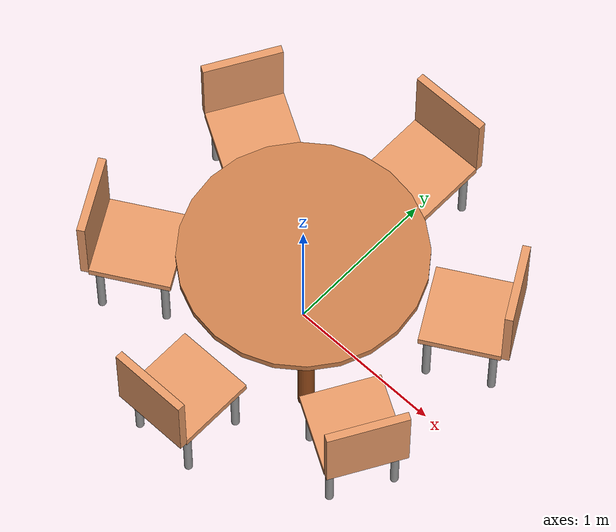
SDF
<?xml version='1.0'?>
<sdf version='1.7'>
  <model name='round_table_with_chairs_1.5m'>
    <model name='chair_1'>
      <static>1</static>
      <link name='chair_base'>
        <visual name='seat_visual'>
          <geometry>
            <box>
              <size>0.5 0.5 0.05</size>
            </box>
          </geometry>
          <pose>0 0 0.45 0 -0 0</pose>
          <material>
            <ambient>0.8 0.5 0.3 1</ambient>
            <diffuse>0.9 0.6 0.4 1</diffuse>
          </material>
        </visual>
        <collision name='seat_collision'>
          <geometry>
            <box>
              <size>0.5 0.5 0.05</size>
            </box>
          </geometry>
          <pose>0 0 0.45 0 -0 0</pose>
        </collision>
        <visual name='backrest_visual'>
          <geometry>
            <box>
              <size>0.5 0.05 0.5</size>
            </box>
          </geometry>
          <pose>0 -0.275 0.7 0 -0 0</pose>
          <material>
            <ambient>0.8 0.5 0.3 1</ambient>
            <diffuse>0.9 0.6 0.4 1</diffuse>
          </material>
        </visual>
        <collision name='backrest_collision'>
          <geometry>
            <box>
              <size>0.5 0.05 0.5</size>
            </box>
          </geometry>
          <pose>0 -0.275 0.7 0 -0 0</pose>
        </collision>
        <visual name='leg1_visual'>
          <geometry>
            <cylinder>
              <radius>0.025</radius>
              <length>0.45</length>
            </cylinder>
          </geometry>
          <pose>0.2 0.2 0.225 0 -0 0</pose>
          <material>
            <ambient>0.5 0.5 0.5 1</ambient>
            <diffuse>0.6 0.6 0.6 1</diffuse>
          </material>
        </visual>
        <collision name='leg1_collision'>
          <geometry>
            <cylinder>
              <radius>0.025</radius>
              <length>0.45</length>
            </cylinder>
          </geometry>
          <pose>0.2 0.2 0.225 0 -0 0</pose>
        </collision>
        <visual name='leg2_visual'>
          <geometry>
            <cylinder>
              <radius>0.025</radius>
              <length>0.45</length>
            </cylinder>
          </geometry>
          <pose>0.2 -0.2 0.225 0 -0 0</pose>
          <material>
            <ambient>0.5 0.5 0.5 1</ambient>
            <diffuse>0.6 0.6 0.6 1</diffuse>
          </material>
        </visual>
        <collision name='leg2_collision'>
          <geometry>
            <cylinder>
              <radius>0.025</radius>
              <length>0.45</length>
            </cylinder>
          </geometry>
          <pose>0.2 -0.2 0.225 0 -0 0</pose>
        </collision>
        <visual name='leg3_visual'>
          <geometry>
            <cylinder>
              <radius>0.025</radius>
              <length>0.45</length>
            </cylinder>
          </geometry>
          <pose>-0.2 0.2 0.225 0 -0 0</pose>
          <material>
            <ambient>0.5 0.5 0.5 1</ambient>
            <diffuse>0.6 0.6 0.6 1</diffuse>
          </material>
        </visual>
        <collision name='leg3_collision'>
          <geometry>
            <cylinder>
              <radius>0.025</radius>
              <length>0.45</length>
            </cylinder>
          </geometry>
          <pose>-0.2 0.2 0.225 0 -0 0</pose>
        </collision>
        <visual name='leg4_visual'>
          <geometry>
            <cylinder>
              <radius>0.025</radius>
              <length>0.45</length>
            </cylinder>
          </geometry>
          <pose>-0.2 -0.2 0.225 0 -0 0</pose>
          <material>
            <ambient>0.5 0.5 0.5 1</ambient>
            <diffuse>0.6 0.6 0.6 1</diffuse>
          </material>
        </visual>
        <collision name='leg4_collision'>
          <geometry>
            <cylinder>
              <radius>0.025</radius>
              <length>0.45</length>
            </cylinder>
          </geometry>
          <pose>-0.2 -0.2 0.225 0 -0 0</pose>
        </collision>
      </link>
      <pose>0.0 -1.0 0 0 -0 0</pose>
    </model>
    <model name='chair_2'>
      <static>1</static>
      <link name='chair_base'>
        <visual name='seat_visual'>
          <geometry>
            <box>
              <size>0.5 0.5 0.05</size>
            </box>
          </geometry>
          <pose>0 0 0.45 0 -0 0</pose>
          <material>
            <ambient>0.8 0.5 0.3 1</ambient>
            <diffuse>0.9 0.6 0.4 1</diffuse>
          </material>
        </visual>
        <collision name='seat_collision'>
          <geometry>
            <box>
              <size>0.5 0.5 0.05</size>
            </box>
          </geometry>
          <pose>0 0 0.45 0 -0 0</pose>
        </collision>
        <visual name='backrest_visual'>
          <geometry>
            <box>
              <size>0.5 0.05 0.5</size>
            </box>
          </geometry>
          <pose>0 -0.275 0.7 0 -0 0</pose>
          <material>
            <ambient>0.8 0.5 0.3 1</ambient>
            <diffuse>0.9 0.6 0.4 1</diffuse>
          </material>
        </visual>
        <collision name='backrest_collision'>
          <geometry>
            <box>
              <size>0.5 0.05 0.5</size>
            </box>
          </geometry>
          <pose>0 -0.275 0.7 0 -0 0</pose>
        </collision>
        <visual name='leg1_visual'>
          <geometry>
            <cylinder>
              <radius>0.025</radius>
              <length>0.45</length>
            </cylinder>
          </geometry>
          <pose>0.2 0.2 0.225 0 -0 0</pose>
          <material>
            <ambient>0.5 0.5 0.5 1</ambient>
            <diffuse>0.6 0.6 0.6 1</diffuse>
          </material>
        </visual>
        <collision name='leg1_collision'>
          <geometry>
            <cylinder>
              <radius>0.025</radius>
              <length>0.45</length>
            </cylinder>
          </geometry>
          <pose>0.2 0.2 0.225 0 -0 0</pose>
        </collision>
        <visual name='leg2_visual'>
          <geometry>
            <cylinder>
              <radius>0.025</radius>
              <length>0.45</length>
            </cylinder>
          </geometry>
          <pose>0.2 -0.2 0.225 0 -0 0</pose>
          <material>
            <ambient>0.5 0.5 0.5 1</ambient>
            <diffuse>0.6 0.6 0.6 1</diffuse>
          </material>
        </visual>
        <collision name='leg2_collision'>
          <geometry>
            <cylinder>
              <radius>0.025</radius>
              <length>0.45</length>
            </cylinder>
          </geometry>
          <pose>0.2 -0.2 0.225 0 -0 0</pose>
        </collision>
        <visual name='leg3_visual'>
          <geometry>
            <cylinder>
              <radius>0.025</radius>
              <length>0.45</length>
            </cylinder>
          </geometry>
          <pose>-0.2 0.2 0.225 0 -0 0</pose>
          <material>
            <ambient>0.5 0.5 0.5 1</ambient>
            <diffuse>0.6 0.6 0.6 1</diffuse>
          </material>
        </visual>
        <collision name='leg3_collision'>
          <geometry>
            <cylinder>
              <radius>0.025</radius>
              <length>0.45</length>
            </cylinder>
          </geometry>
          <pose>-0.2 0.2 0.225 0 -0 0</pose>
        </collision>
        <visual name='leg4_visual'>
          <geometry>
            <cylinder>
              <radius>0.025</radius>
              <length>0.45</length>
            </cylinder>
          </geometry>
          <pose>-0.2 -0.2 0.225 0 -0 0</pose>
          <material>
            <ambient>0.5 0.5 0.5 1</ambient>
            <diffuse>0.6 0.6 0.6 1</diffuse>
          </material>
        </visual>
        <collision name='leg4_collision'>
          <geometry>
            <cylinder>
              <radius>0.025</radius>
              <length>0.45</length>
            </cylinder>
          </geometry>
          <pose>-0.2 -0.2 0.225 0 -0 0</pose>
        </collision>
      </link>
      <pose>0.866025 -0.5 0 0 -0 1.04620</pose>
    </model>
    <model name='chair_3'>
      <static>1</static>
      <link name='chair_base'>
        <visual name='seat_visual'>
          <geometry>
            <box>
              <size>0.5 0.5 0.05</size>
            </box>
          </geometry>
          <pose>0 0 0.45 0 -0 0</pose>
          <material>
            <ambient>0.8 0.5 0.3 1</ambient>
            <diffuse>0.9 0.6 0.4 1</diffuse>
          </material>
        </visual>
        <collision name='seat_collision'>
          <geometry>
            <box>
              <size>0.5 0.5 0.05</size>
            </box>
          </geometry>
          <pose>0 0 0.45 0 -0 0</pose>
        </collision>
        <visual name='backrest_visual'>
          <geometry>
            <box>
              <size>0.5 0.05 0.5</size>
            </box>
          </geometry>
          <pose>0 -0.275 0.7 0 -0 0</pose>
          <material>
            <ambient>0.8 0.5 0.3 1</ambient>
            <diffuse>0.9 0.6 0.4 1</diffuse>
          </material>
        </visual>
        <collision name='backrest_collision'>
          <geometry>
            <box>
              <size>0.5 0.05 0.5</size>
            </box>
          </geometry>
          <pose>0 -0.275 0.7 0 -0 0</pose>
        </collision>
        <visual name='leg1_visual'>
          <geometry>
            <cylinder>
              <radius>0.025</radius>
              <length>0.45</length>
            </cylinder>
          </geometry>
          <pose>0.2 0.2 0.225 0 -0 0</pose>
          <material>
            <ambient>0.5 0.5 0.5 1</ambient>
            <diffuse>0.6 0.6 0.6 1</diffuse>
          </material>
        </visual>
        <collision name='leg1_collision'>
          <geometry>
            <cylinder>
              <radius>0.025</radius>
              <length>0.45</length>
            </cylinder>
          </geometry>
          <pose>0.2 0.2 0.225 0 -0 0</pose>
        </collision>
        <visual name='leg2_visual'>
          <geometry>
            <cylinder>
              <radius>0.025</radius>
              <length>0.45</length>
            </cylinder>
          </geometry>
          <pose>0.2 -0.2 0.225 0 -0 0</pose>
          <material>
            <ambient>0.5 0.5 0.5 1</ambient>
            <diffuse>0.6 0.6 0.6 1</diffuse>
          </material>
        </visual>
        <collision name='leg2_collision'>
          <geometry>
            <cylinder>
              <radius>0.025</radius>
              <length>0.45</length>
            </cylinder>
          </geometry>
          <pose>0.2 -0.2 0.225 0 -0 0</pose>
        </collision>
        <visual name='leg3_visual'>
          <geometry>
            <cylinder>
              <radius>0.025</radius>
              <length>0.45</length>
            </cylinder>
          </geometry>
          <pose>-0.2 0.2 0.225 0 -0 0</pose>
          <material>
            <ambient>0.5 0.5 0.5 1</ambient>
            <diffuse>0.6 0.6 0.6 1</diffuse>
          </material>
        </visual>
        <collision name='leg3_collision'>
          <geometry>
            <cylinder>
              <radius>0.025</radius>
              <length>0.45</length>
            </cylinder>
          </geometry>
          <pose>-0.2 0.2 0.225 0 -0 0</pose>
        </collision>
        <visual name='leg4_visual'>
          <geometry>
            <cylinder>
              <radius>0.025</radius>
              <length>0.45</length>
            </cylinder>
          </geometry>
          <pose>-0.2 -0.2 0.225 0 -0 0</pose>
          <material>
            <ambient>0.5 0.5 0.5 1</ambient>
            <diffuse>0.6 0.6 0.6 1</diffuse>
          </material>
        </visual>
        <collision name='leg4_collision'>
          <geometry>
            <cylinder>
              <radius>0.025</radius>
              <length>0.45</length>
            </cylinder>
          </geometry>
          <pose>-0.2 -0.2 0.225 0 -0 0</pose>
        </collision>
      </link>
      <pose>0.866025 0.5 0 0 -0 2.09440</pose>
    </model>
    <model name='chair_4'>
      <static>1</static>
      <link name='chair_base'>
        <visual name='seat_visual'>
          <geometry>
            <box>
              <size>0.5 0.5 0.05</size>
            </box>
          </geometry>
          <pose>0 0 0.45 0 -0 0</pose>
          <material>
            <ambient>0.8 0.5 0.3 1</ambient>
            <diffuse>0.9 0.6 0.4 1</diffuse>
          </material>
        </visual>
        <collision name='seat_collision'>
          <geometry>
            <box>
              <size>0.5 0.5 0.05</size>
            </box>
          </geometry>
          <pose>0 0 0.45 0 -0 0</pose>
        </collision>
        <visual name='backrest_visual'>
          <geometry>
            <box>
              <size>0.5 0.05 0.5</size>
            </box>
          </geometry>
          <pose>0 -0.275 0.7 0 -0 0</pose>
          <material>
            <ambient>0.8 0.5 0.3 1</ambient>
            <diffuse>0.9 0.6 0.4 1</diffuse>
          </material>
        </visual>
        <collision name='backrest_collision'>
          <geometry>
            <box>
              <size>0.5 0.05 0.5</size>
            </box>
          </geometry>
          <pose>0 -0.275 0.7 0 -0 0</pose>
        </collision>
        <visual name='leg1_visual'>
          <geometry>
            <cylinder>
              <radius>0.025</radius>
              <length>0.45</length>
            </cylinder>
          </geometry>
          <pose>0.2 0.2 0.225 0 -0 0</pose>
          <material>
            <ambient>0.5 0.5 0.5 1</ambient>
            <diffuse>0.6 0.6 0.6 1</diffuse>
          </material>
        </visual>
        <collision name='leg1_collision'>
          <geometry>
            <cylinder>
              <radius>0.025</radius>
              <length>0.45</length>
            </cylinder>
          </geometry>
          <pose>0.2 0.2 0.225 0 -0 0</pose>
        </collision>
        <visual name='leg2_visual'>
          <geometry>
            <cylinder>
              <radius>0.025</radius>
              <length>0.45</length>
            </cylinder>
          </geometry>
          <pose>0.2 -0.2 0.225 0 -0 0</pose>
          <material>
            <ambient>0.5 0.5 0.5 1</ambient>
            <diffuse>0.6 0.6 0.6 1</diffuse>
          </material>
        </visual>
        <collision name='leg2_collision'>
          <geometry>
            <cylinder>
              <radius>0.025</radius>
              <length>0.45</length>
            </cylinder>
          </geometry>
          <pose>0.2 -0.2 0.225 0 -0 0</pose>
        </collision>
        <visual name='leg3_visual'>
          <geometry>
            <cylinder>
              <radius>0.025</radius>
              <length>0.45</length>
            </cylinder>
          </geometry>
          <pose>-0.2 0.2 0.225 0 -0 0</pose>
          <material>
            <ambient>0.5 0.5 0.5 1</ambient>
            <diffuse>0.6 0.6 0.6 1</diffuse>
          </material>
        </visual>
        <collision name='leg3_collision'>
          <geometry>
            <cylinder>
              <radius>0.025</radius>
              <length>0.45</length>
            </cylinder>
          </geometry>
          <pose>-0.2 0.2 0.225 0 -0 0</pose>
        </collision>
        <visual name='leg4_visual'>
          <geometry>
            <cylinder>
              <radius>0.025</radius>
              <length>0.45</length>
            </cylinder>
          </geometry>
          <pose>-0.2 -0.2 0.225 0 -0 0</pose>
          <material>
            <ambient>0.5 0.5 0.5 1</ambient>
            <diffuse>0.6 0.6 0.6 1</diffuse>
          </material>
        </visual>
        <collision name='leg4_collision'>
          <geometry>
            <cylinder>
              <radius>0.025</radius>
              <length>0.45</length>
            </cylinder>
          </geometry>
          <pose>-0.2 -0.2 0.225 0 -0 0</pose>
        </collision>
      </link>
      <pose>0.0 1.0 0 0 -0 3.141592</pose>
    </model>
    <model name='chair_5'>
      <static>1</static>
      <link name='chair_base'>
        <visual name='seat_visual'>
          <geometry>
            <box>
              <size>0.5 0.5 0.05</size>
            </box>
          </geometry>
          <pose>0 0 0.45 0 -0 0</pose>
          <material>
            <ambient>0.8 0.5 0.3 1</ambient>
            <diffuse>0.9 0.6 0.4 1</diffuse>
          </material>
        </visual>
        <collision name='seat_collision'>
          <geometry>
            <box>
              <size>0.5 0.5 0.05</size>
            </box>
          </geometry>
          <pose>0 0 0.45 0 -0 0</pose>
        </collision>
        <visual name='backrest_visual'>
          <geometry>
            <box>
              <size>0.5 0.05 0.5</size>
            </box>
          </geometry>
          <pose>0 -0.275 0.7 0 -0 0</pose>
          <material>
            <ambient>0.8 0.5 0.3 1</ambient>
            <diffuse>0.9 0.6 0.4 1</diffuse>
          </material>
        </visual>
        <collision name='backrest_collision'>
          <geometry>
            <box>
              <size>0.5 0.05 0.5</size>
            </box>
          </geometry>
          <pose>0 -0.275 0.7 0 -0 0</pose>
        </collision>
        <visual name='leg1_visual'>
          <geometry>
            <cylinder>
              <radius>0.025</radius>
              <length>0.45</length>
            </cylinder>
          </geometry>
          <pose>0.2 0.2 0.225 0 -0 0</pose>
          <material>
            <ambient>0.5 0.5 0.5 1</ambient>
            <diffuse>0.6 0.6 0.6 1</diffuse>
          </material>
        </visual>
        <collision name='leg1_collision'>
          <geometry>
            <cylinder>
              <radius>0.025</radius>
              <length>0.45</length>
            </cylinder>
          </geometry>
          <pose>0.2 0.2 0.225 0 -0 0</pose>
        </collision>
        <visual name='leg2_visual'>
          <geometry>
            <cylinder>
              <radius>0.025</radius>
              <length>0.45</length>
            </cylinder>
          </geometry>
          <pose>0.2 -0.2 0.225 0 -0 0</pose>
          <material>
            <ambient>0.5 0.5 0.5 1</ambient>
            <diffuse>0.6 0.6 0.6 1</diffuse>
          </material>
        </visual>
        <collision name='leg2_collision'>
          <geometry>
            <cylinder>
              <radius>0.025</radius>
              <length>0.45</length>
            </cylinder>
          </geometry>
          <pose>0.2 -0.2 0.225 0 -0 0</pose>
        </collision>
        <visual name='leg3_visual'>
          <geometry>
            <cylinder>
              <radius>0.025</radius>
              <length>0.45</length>
            </cylinder>
          </geometry>
          <pose>-0.2 0.2 0.225 0 -0 0</pose>
          <material>
            <ambient>0.5 0.5 0.5 1</ambient>
            <diffuse>0.6 0.6 0.6 1</diffuse>
          </material>
        </visual>
        <collision name='leg3_collision'>
          <geometry>
            <cylinder>
              <radius>0.025</radius>
              <length>0.45</length>
            </cylinder>
          </geometry>
          <pose>-0.2 0.2 0.225 0 -0 0</pose>
        </collision>
        <visual name='leg4_visual'>
          <geometry>
            <cylinder>
              <radius>0.025</radius>
              <length>0.45</length>
            </cylinder>
          </geometry>
          <pose>-0.2 -0.2 0.225 0 -0 0</pose>
          <material>
            <ambient>0.5 0.5 0.5 1</ambient>
            <diffuse>0.6 0.6 0.6 1</diffuse>
          </material>
        </visual>
        <collision name='leg4_collision'>
          <geometry>
            <cylinder>
              <radius>0.025</radius>
              <length>0.45</length>
            </cylinder>
          </geometry>
          <pose>-0.2 -0.2 0.225 0 -0 0</pose>
        </collision>
      </link>
      <pose>-0.866025 0.5 0 0 -0 -2.09440</pose>
    </model>
    <model name='chair_6'>
      <static>1</static>
      <link name='chair_base'>
        <visual name='seat_visual'>
          <geometry>
            <box>
              <size>0.5 0.5 0.05</size>
            </box>
          </geometry>
          <pose>0 0 0.45 0 -0 0</pose>
          <material>
            <ambient>0.8 0.5 0.3 1</ambient>
            <diffuse>0.9 0.6 0.4 1</diffuse>
          </material>
        </visual>
        <collision name='seat_collision'>
          <geometry>
            <box>
              <size>0.5 0.5 0.05</size>
            </box>
          </geometry>
          <pose>0 0 0.45 0 -0 0</pose>
        </collision>
        <visual name='backrest_visual'>
          <geometry>
            <box>
              <size>0.5 0.05 0.5</size>
            </box>
          </geometry>
          <pose>0 -0.275 0.7 0 -0 0</pose>
          <material>
            <ambient>0.8 0.5 0.3 1</ambient>
            <diffuse>0.9 0.6 0.4 1</diffuse>
          </material>
        </visual>
        <collision name='backrest_collision'>
          <geometry>
            <box>
              <size>0.5 0.05 0.5</size>
            </box>
          </geometry>
          <pose>0 -0.275 0.7 0 -0 0</pose>
        </collision>
        <visual name='leg1_visual'>
          <geometry>
            <cylinder>
              <radius>0.025</radius>
              <length>0.45</length>
            </cylinder>
          </geometry>
          <pose>0.2 0.2 0.225 0 -0 0</pose>
          <material>
            <ambient>0.5 0.5 0.5 1</ambient>
            <diffuse>0.6 0.6 0.6 1</diffuse>
          </material>
        </visual>
        <collision name='leg1_collision'>
          <geometry>
            <cylinder>
              <radius>0.025</radius>
              <length>0.45</length>
            </cylinder>
          </geometry>
          <pose>0.2 0.2 0.225 0 -0 0</pose>
        </collision>
        <visual name='leg2_visual'>
          <geometry>
            <cylinder>
              <radius>0.025</radius>
              <length>0.45</length>
            </cylinder>
          </geometry>
          <pose>0.2 -0.2 0.225 0 -0 0</pose>
          <material>
            <ambient>0.5 0.5 0.5 1</ambient>
            <diffuse>0.6 0.6 0.6 1</diffuse>
          </material>
        </visual>
        <collision name='leg2_collision'>
          <geometry>
            <cylinder>
              <radius>0.025</radius>
              <length>0.45</length>
            </cylinder>
          </geometry>
          <pose>0.2 -0.2 0.225 0 -0 0</pose>
        </collision>
        <visual name='leg3_visual'>
          <geometry>
            <cylinder>
              <radius>0.025</radius>
              <length>0.45</length>
            </cylinder>
          </geometry>
          <pose>-0.2 0.2 0.225 0 -0 0</pose>
          <material>
            <ambient>0.5 0.5 0.5 1</ambient>
            <diffuse>0.6 0.6 0.6 1</diffuse>
          </material>
        </visual>
        <collision name='leg3_collision'>
          <geometry>
            <cylinder>
              <radius>0.025</radius>
              <length>0.45</length>
            </cylinder>
          </geometry>
          <pose>-0.2 0.2 0.225 0 -0 0</pose>
        </collision>
        <visual name='leg4_visual'>
          <geometry>
            <cylinder>
              <radius>0.025</radius>
              <length>0.45</length>
            </cylinder>
          </geometry>
          <pose>-0.2 -0.2 0.225 0 -0 0</pose>
          <material>
            <ambient>0.5 0.5 0.5 1</ambient>
            <diffuse>0.6 0.6 0.6 1</diffuse>
          </material>
        </visual>
        <collision name='leg4_collision'>
          <geometry>
            <cylinder>
              <radius>0.025</radius>
              <length>0.45</length>
            </cylinder>
          </geometry>
          <pose>-0.2 -0.2 0.225 0 -0 0</pose>
        </collision>
      </link>
      <pose>-0.866025 -0.5 0 0 -0 -1.04620</pose>
    </model>
    <model name='round_table'>
      <static>1</static>
      <link name='table_top'>
        <pose>0 0 0.75 0 -0 0</pose>
        <visual name='visual_top'>
          <geometry>
            <cylinder>
              <radius>0.75</radius>
              <length>0.05</length>
            </cylinder>
          </geometry>
          <material>
            <ambient>0.8 0.5 0.3 1</ambient>
          </material>
        </visual>
        <collision name='collision_top'>
          <geometry>
            <cylinder>
              <radius>1.5</radius>
              <length>0.05</length>
            </cylinder>
          </geometry>
        </collision>
      </link>
      <link name='table_leg_1'>
        <pose>0.4 0.4 0.375 0 -0 0</pose>
        <visual name='visual_leg_1'>
          <geometry>
            <cylinder>
              <radius>0.05</radius>
              <length>0.75</length>
            </cylinder>
          </geometry>
          <material>
            <ambient>0.6 0.3 0.1 1</ambient>
          </material>
        </visual>
        <collision name='collision_leg_1'>
          <geometry>
            <cylinder>
              <radius>0.05</radius>
              <length>0.75</length>
            </cylinder>
          </geometry>
        </collision>
      </link>
      <link name='table_leg_2'>
        <pose>-0.4 0.4 0.375 0 -0 0</pose>
        <visual name='visual_leg_2'>
          <geometry>
            <cylinder>
              <radius>0.05</radius>
              <length>0.75</length>
            </cylinder>
          </geometry>
          <material>
            <ambient>0.6 0.3 0.1 1</ambient>
          </material>
        </visual>
        <collision name='collision_leg_2'>
          <geometry>
            <cylinder>
              <radius>0.05</radius>
              <length>0.75</length>
            </cylinder>
          </geometry>
        </collision>
      </link>
      <link name='table_leg_3'>
        <pose>-0.4 -0.4 0.375 0 -0 0</pose>
        <visual name='visual_leg_3'>
          <geometry>
            <cylinder>
              <radius>0.05</radius>
              <length>0.75</length>
            </cylinder>
          </geometry>
          <material>
            <ambient>0.6 0.3 0.1 1</ambient>
          </material>
        </visual>
        <collision name='collision_leg_3'>
          <geometry>
            <cylinder>
              <radius>0.05</radius>
              <length>0.75</length>
            </cylinder>
          </geometry>
        </collision>
      </link>
      <link name='table_leg_4'>
        <pose>0.4 -0.4 0.375 0 -0 0</pose>
        <visual name='visual_leg_4'>
          <geometry>
            <cylinder>
              <radius>0.05</radius>
              <length>0.75</length>
            </cylinder>
          </geometry>
          <material>
            <ambient>0.6 0.3 0.1 1</ambient>
          </material>
        </visual>
        <collision name='collision_leg_4'>
          <geometry>
            <cylinder>
              <radius>0.05</radius>
              <length>0.75</length>
            </cylinder>
          </geometry>
        </collision>
      </link>
      <pose>0 0 0 0 -0 0</pose>
    </model>
    <static>0</static>
    <allow_auto_disable>1</allow_auto_disable>
  </model>
</sdf>
